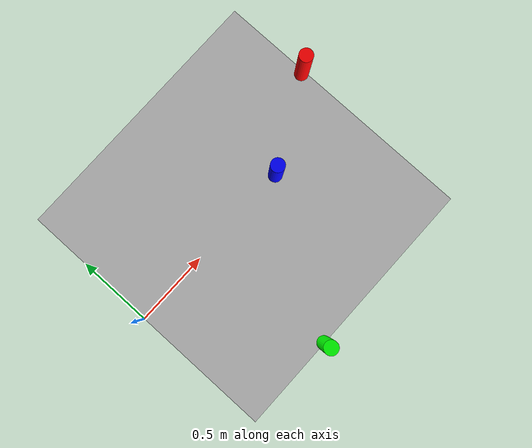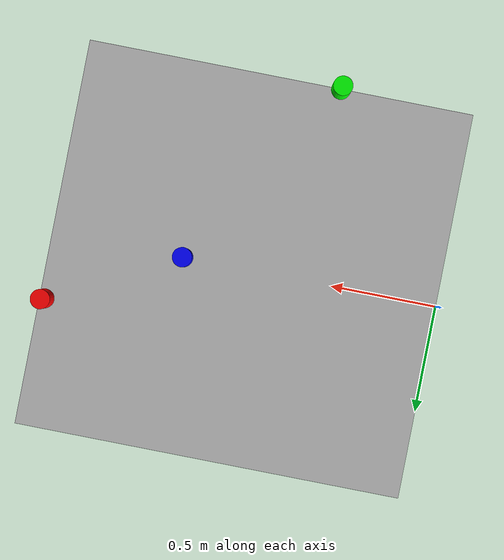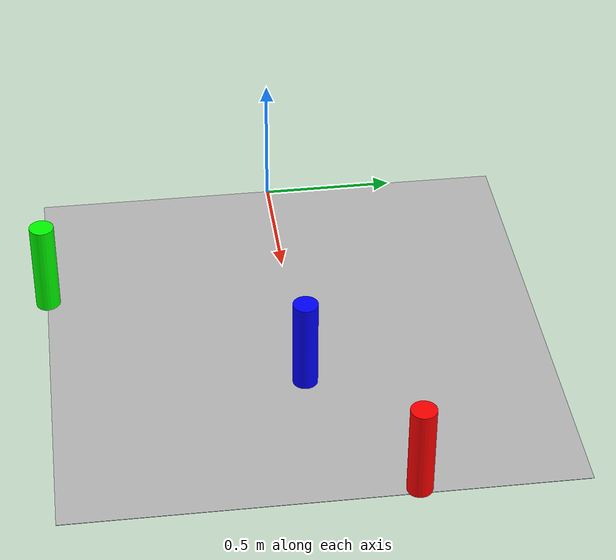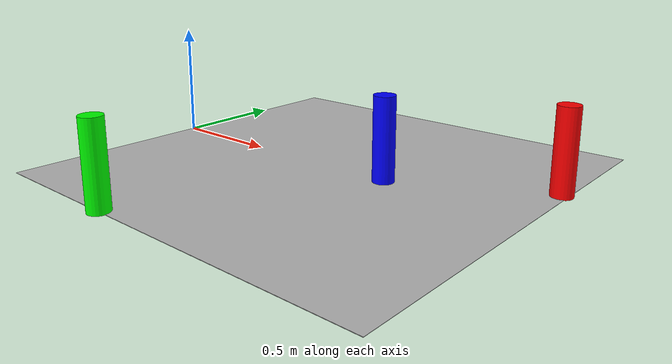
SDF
<sdf version="1.6">
 <world name="default">
  <light name="sun" type="directional">
   <pose>0 0 10 0 -0 0</pose>
   <diffuse>0.8 0.8 0.8 1</diffuse>
   <specular>0.1 0.1 0.1 1</specular>
   <attenuation>
    <range>1000</range>
    <constant>0.9</constant>
    <linear>0.01</linear>
    <quadratic>0.001</quadratic>
   </attenuation>
   <direction>-0.5 0.5 -1</direction>
  </light>
  <physics name="default_physics" default="0" type="ode">
   <max_step_size>0.01</max_step_size>
   <real_time_factor>1</real_time_factor>
   <real_time_update_rate>100</real_time_update_rate>
  </physics>
  <gravity>0 0 -9.8</gravity>
  <magnetic_field>6e-06 2.3e-05 -4.2e-05</magnetic_field>
  <atmosphere type="adiabatic"/>
  <scene><ambient>0.4 0.4 0.4 1</ambient><background>0.7 0.7 0.7 1</background><shadows>1</shadows></scene>
  <spherical_coordinates>
   <surface_model>EARTH_WGS84</surface_model>
   <latitude_deg>0</latitude_deg>
   <longitude_deg>0</longitude_deg>
   <elevation>0</elevation>
   <heading_deg>0</heading_deg>
  </spherical_coordinates>
  <model name="red_rover">
   <pose>1.80363 0.315876 0.176626 7e-06 9.3e-05 -0.001275</pose>
   <link name="link">
    <inertial>
     <mass>1</mass>
     <inertia><ixx>0.145833</ixx><ixy>0</ixy><ixz>0</ixz><iyy>0.145833</iyy><iyz>0</iyz><izz>0.125</izz></inertia>
    </inertial>
    <collision name="collision">
     <geometry><cylinder><radius>0.0457</radius><length>0.355</length></cylinder></geometry>
    </collision>
    <visual name="visual">
     <geometry><cylinder><radius>0.0457</radius><length>0.355</length></cylinder></geometry>
     <material>
      <ambient>1 0 0 1</ambient>
      <diffuse>1 0 0 1</diffuse>
      <specular>0.1 0.1 0.1 1</specular>
      <emissive>0 0 0 0</emissive>
     </material>
    </visual>
   </link>
  </model>
  <model name="blue_rover">
   <pose>0.63086 -0.910983 0.176626 8e-06 9.4e-05 -0.001329</pose>
   <link name="link">
    <inertial>
     <mass>1</mass>
     <inertia><ixx>0.145833</ixx><ixy>0</ixy><ixz>0</ixz><iyy>0.145833</iyy><iyz>0</iyz><izz>0.125</izz></inertia>
    </inertial>
    <collision name="collision">
     <geometry><cylinder><radius>0.0457</radius><length>0.355</length></cylinder></geometry>
    </collision>
    <visual name="visual">
     <geometry><cylinder><radius>0.0457</radius><length>0.355</length></cylinder></geometry>
     <material>
      <ambient>0 1 0 1</ambient>
      <diffuse>0 1 0 1</diffuse>
      <specular>0.1 0.1 0.1 1</specular>
      <emissive>0 0 0 0</emissive>
     </material>
    </visual>
   </link>
  </model>
  <model name="green_rover">
   <pose>1.20288 0.001749 0.176626 8e-06 9.4e-05 -0.001347</pose>
   <link name="link">
    <inertial>
     <mass>1</mass>
     <inertia><ixx>0.145833</ixx><ixy>0</ixy><ixz>0</ixz><iyy>0.145833</iyy><iyz>0</iyz><izz>0.125</izz></inertia>
    </inertial>
    <collision name="collision">
     <geometry><cylinder><radius>0.0457</radius><length>0.355</length></cylinder></geometry>
    </collision>
    <visual name="visual">
     <geometry><cylinder><radius>0.0457</radius><length>0.355</length></cylinder></geometry>
     <material>
      <ambient>0 0 1 1</ambient>
      <diffuse>0 0 1 1</diffuse>
      <specular>0.1 0.1 0.1 1</specular>
      <emissive>0 0 0 0</emissive>
     </material>
    </visual>
   </link>
  </model>
  <model name="roadnetwork">
   <pose>0.9144 0 0 0 0 -1.57</pose>
   <static>1</static>
   <link name="link">
    <collision name="collision">
     <geometry><plane><normal>0 0 1</normal><size>1.8288 1.8288</size></plane></geometry>
     <surface><friction><ode><mu>100</mu><mu2>50</mu2></ode></friction></surface>
    </collision>
    <visual name="visual">
     <cast_shadows>0</cast_shadows>
     <geometry><plane><normal>0 0 1</normal><size>1.8288 1.8288</size></plane></geometry>
     <material>
      <script>
       <uri>model://roadnetwork/materials/scripts</uri>
       <uri>model://roadnetwork/materials/textures</uri>
       <name>RoadNetwork/Image</name>
      </script>
     </material>
    </visual>
   </link>
  </model>
 </world>
</sdf>
